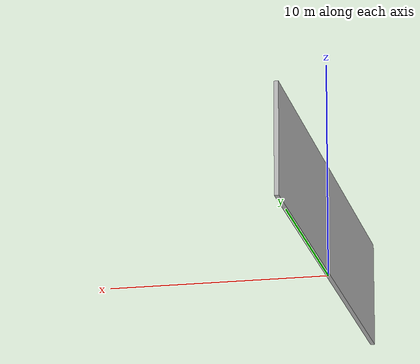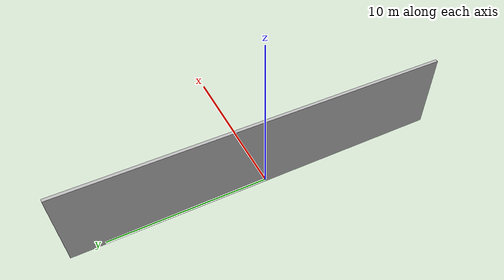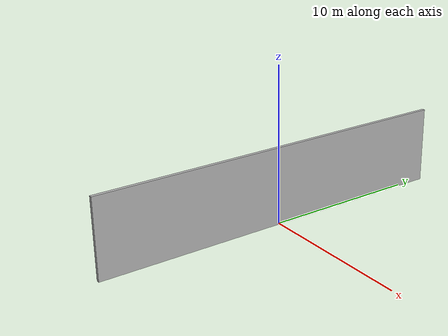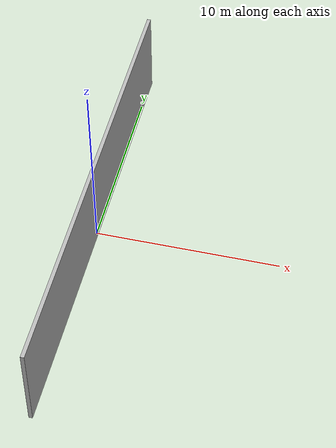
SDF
<?xml version="1.0" ?>

<sdf version="1.5">
<model name='concrete_20_2400_500'>
      <static>1</static>
      <link name="link">
        <pose>0 0 2.5 0 0 0</pose>

        <visual name="visual">
          <geometry>
            <box>
              <size>0.2 24.0 5.0</size>
            </box>
          </geometry>
          <material>
            <script>
              <uri>model:///home/stibipet/mrs_workspace/src/radiation_nodes/gazebo_rad_obstacle/gazebo_models/materials/scripts</uri>
              <uri>model:///home/stibipet/mrs_workspace/src/radiation_nodes/gazebo_rad_obstacle/gazebo_models/materials/textures/</uri>
              <name>concrete/Image</name>
            </script>
          </material>
        </visual>

      </link>

      <plugin name='concrete' filename='libgazebo_rad_obstacle.so'>
        <depth>0.2</depth>
        <width>24.0</width>
        <height>5.0</height>
        <material>concrete</material>
        <density>2.3</density> <!-- g/cm^3 -->
        <mac60kev>0.266</mac60kev> <!-- cm^2/g -->
        <mac600kev>0.06236</mac600kev> <!-- cm^2/g -->
      </plugin>

    </model>
  </sdf>
